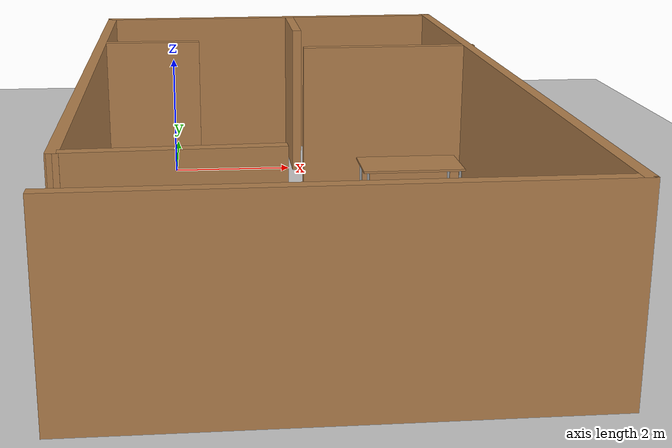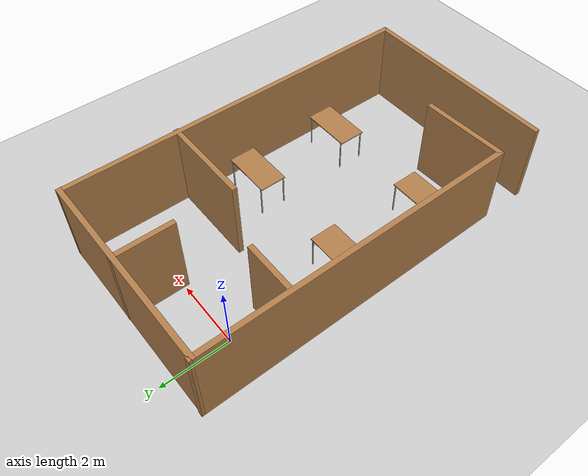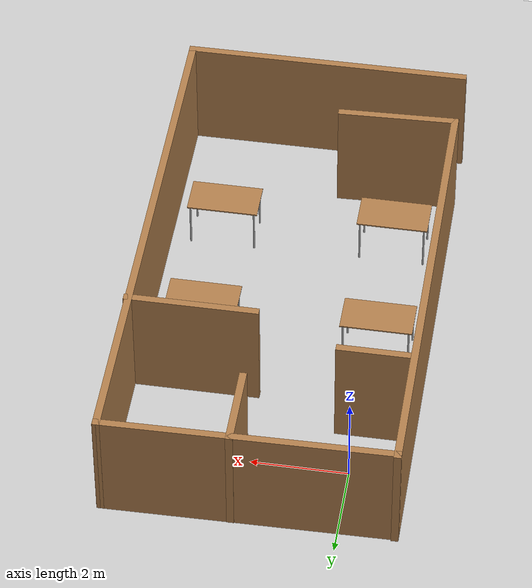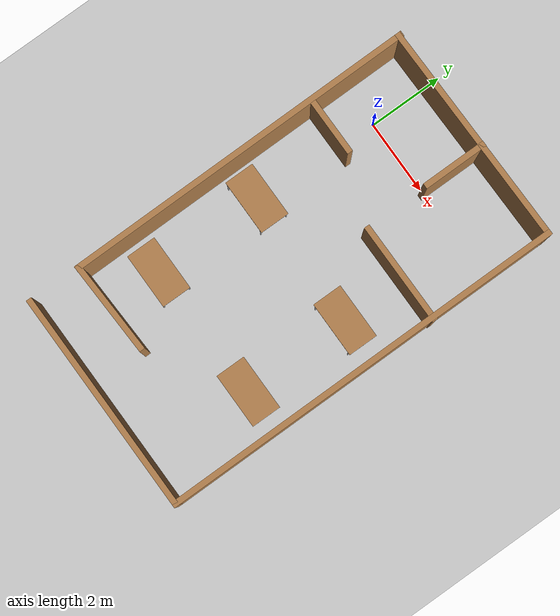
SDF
<sdf version="1.7">
 <world name="default">
  <light name="sun" type="directional">
   <pose>0 0 10 0 -0 0</pose>
   <diffuse>0.8 0.8 0.8 1</diffuse>
   <specular>0.2 0.2 0.2 1</specular>
   <attenuation>
    <range>1000</range>
    <constant>0.9</constant>
    <linear>0.01</linear>
    <quadratic>0.001</quadratic>
   </attenuation>
   <direction>-0.5 0.1 -0.9</direction>
   <spot><inner_angle>0</inner_angle><outer_angle>0</outer_angle><falloff>0</falloff></spot>
  </light>
  <model name="ground_plane">
   <static>1</static>
   <link name="link">
    <collision name="collision">
     <geometry><plane><normal>0 0 1</normal><size>100 100</size></plane></geometry>
     <surface>
      <contact><collide_bitmask>65535</collide_bitmask></contact>
      <friction><ode><mu>100</mu><mu2>50</mu2></ode></friction>
     </surface>
    </collision>
    <visual name="visual">
     <cast_shadows>0</cast_shadows>
     <geometry><plane><normal>0 0 1</normal><size>100 100</size></plane></geometry>
     <material>
      <script><uri>file://media/materials/scripts/gazebo.material</uri><name>Gazebo/Grey</name></script>
     </material>
    </visual>
   </link>
  </model>
  <gravity>0 0 -9.8</gravity>
  <magnetic_field>6e-06 2.3e-05 -4.2e-05</magnetic_field>
  <atmosphere type="adiabatic"/>
  <physics type="ode">
   <max_step_size>0.001</max_step_size>
   <real_time_factor>1</real_time_factor>
   <real_time_update_rate>1000</real_time_update_rate>
  </physics>
  <scene><ambient>0.4 0.4 0.4 1</ambient><background>0.7 0.7 0.7 1</background><shadows>1</shadows></scene>
  <spherical_coordinates>
   <surface_model>EARTH_WGS84</surface_model>
   <latitude_deg>0</latitude_deg>
   <longitude_deg>0</longitude_deg>
   <elevation>0</elevation>
   <heading_deg>0</heading_deg>
  </spherical_coordinates>
  <model name="kitchen">
   <pose>1.82809 -3.84751 0 0 0 -1.56808</pose>
   <link name="Wall_0">
    <collision name="Wall_0_Collision">
     <geometry><box><size>6.02684 0.15 2.5</size></box></geometry>
     <pose>0 0 1.25 0 -0 0</pose>
    </collision>
    <visual name="Wall_0_Visual">
     <pose>0 0 1.25 0 -0 0</pose>
     <geometry><box><size>6.02684 0.15 2.5</size></box></geometry>
     <material>
      <script><uri>file://media/materials/scripts/gazebo.material</uri><name>Gazebo/Wood</name></script>
      <ambient>1 1 1 1</ambient>
     </material>
     <meta><layer>0</layer></meta>
    </visual>
    <pose>-5.3846 -0.0133 0 0 -0 1.58438</pose>
   </link>
   <link name="Wall_10">
    <collision name="Wall_10_Collision">
     <geometry><box><size>1.75 0.15 2.5</size></box></geometry>
     <pose>0 0 1.25 0 -0 0</pose>
    </collision>
    <visual name="Wall_10_Visual">
     <pose>0 0 1.25 0 -0 0</pose>
     <geometry><box><size>1.75 0.15 2.5</size></box></geometry>
     <material>
      <script><uri>file://media/materials/scripts/gazebo.material</uri><name>Gazebo/Wood</name></script>
      <ambient>1 1 1 1</ambient>
     </material>
     <meta><layer>0</layer></meta>
    </visual>
    <pose>-4.59662 0.319041 0 0 -0 0</pose>
   </link>
   <link name="Wall_12">
    <collision name="Wall_12_Collision">
     <geometry><box><size>1.5 0.15 2.5</size></box></geometry>
     <pose>0 0 1.25 0 -0 0</pose>
    </collision>
    <visual name="Wall_12_Visual">
     <pose>0 0 1.25 0 -0 0</pose>
     <geometry><box><size>1.5 0.15 2.5</size></box></geometry>
     <material>
      <script><uri>file://media/materials/scripts/gazebo.material</uri><name>Gazebo/Wood</name></script>
      <ambient>1 1 1 1</ambient>
     </material>
     <meta><layer>0</layer></meta>
    </visual>
    <pose>-2.7632 -2.12359 0 0 -0 1.5708</pose>
   </link>
   <link name="Wall_2">
    <collision name="Wall_2_Collision">
     <geometry><box><size>11 0.15 2.5</size></box></geometry>
     <pose>0 0 1.25 0 -0 0</pose>
    </collision>
    <visual name="Wall_2_Visual">
     <pose>0 0 1.25 0 -0 0</pose>
     <geometry><box><size>11 0.15 2.5</size></box></geometry>
     <material>
      <script><uri>file://media/materials/scripts/gazebo.material</uri><name>Gazebo/Wood</name></script>
      <ambient>1 1 1 1</ambient>
     </material>
     <meta><layer>0</layer></meta>
    </visual>
    <pose>0.000504 2.925 0 0 -0 0</pose>
   </link>
   <link name="Wall_3">
    <collision name="Wall_3_Collision">
     <geometry><box><size>6 0.15 2.5</size></box></geometry>
     <pose>0 0 1.25 0 -0 0</pose>
    </collision>
    <visual name="Wall_3_Visual">
     <pose>0 0 1.25 0 -0 0</pose>
     <geometry><box><size>6 0.15 2.5</size></box></geometry>
     <material>
      <script><uri>file://media/materials/scripts/gazebo.material</uri><name>Gazebo/Wood</name></script>
      <ambient>1 1 1 1</ambient>
     </material>
     <meta><layer>0</layer></meta>
    </visual>
    <pose>5.42551 1e-06 0 0 -0 -1.5708</pose>
   </link>
   <link name="Wall_5">
    <collision name="Wall_5_Collision">
     <geometry><box><size>9.55781 0.15 2.5</size></box></geometry>
     <pose>0 0 1.25 0 -0 0</pose>
    </collision>
    <visual name="Wall_5_Visual">
     <pose>0 0 1.25 0 -0 0</pose>
     <geometry><box><size>9.55781 0.15 2.5</size></box></geometry>
     <material>
      <script><uri>file://media/materials/scripts/gazebo.material</uri><name>Gazebo/Wood</name></script>
      <ambient>1 1 1 1</ambient>
     </material>
     <meta><layer>0</layer></meta>
    </visual>
    <pose>-0.667786 -2.93639 0 0 -0 0.003233</pose>
   </link>
   <link name="Wall_6">
    <collision name="Wall_6_Collision">
     <geometry><box><size>2.52794 0.15 2.5</size></box></geometry>
     <pose>0 0 1.25 0 -0 0</pose>
    </collision>
    <visual name="Wall_6_Visual">
     <pose>0 0 1.25 0 -0 0</pose>
     <geometry><box><size>2.52794 0.15 2.5</size></box></geometry>
     <material>
      <script><uri>file://media/materials/scripts/gazebo.material</uri><name>Gazebo/Wood</name></script>
      <ambient>1 1 1 1</ambient>
     </material>
     <meta><layer>0</layer></meta>
    </visual>
    <pose>3.99582 -1.71767 0 0 -0 1.60436</pose>
   </link>
   <link name="Wall_8">
    <collision name="Wall_8_Collision">
     <geometry><box><size>2.75 0.15 2.5</size></box></geometry>
     <pose>0 0 1.25 0 -0 0</pose>
    </collision>
    <visual name="Wall_8_Visual">
     <pose>0 0 1.25 0 -0 0</pose>
     <geometry><box><size>2.75 0.15 2.5</size></box></geometry>
     <material>
      <script><uri>file://media/materials/scripts/gazebo.material</uri><name>Gazebo/Wood</name></script>
      <ambient>1 1 1 1</ambient>
     </material>
     <meta><layer>0</layer></meta>
    </visual>
    <pose>-2.04499 1.65246 0 0 -0 -1.5708</pose>
   </link>
   <static>1</static>
  </model>
  <model name="table">
   <static>1</static>
   <link name="link">
    <collision name="surface">
     <pose>0 0 1 0 -0 0</pose>
     <geometry><box><size>1.5 0.8 0.03</size></box></geometry>
     <surface><friction><ode><mu>0.6</mu><mu2>0.6</mu2></ode></friction></surface>
    </collision>
    <visual name="visual1">
     <pose>0 0 1 0 -0 0</pose>
     <geometry><box><size>1.5 0.8 0.03</size></box></geometry>
     <material>
      <script><uri>file://media/materials/scripts/gazebo.material</uri><name>Gazebo/Wood</name></script>
     </material>
    </visual>
    <collision name="front_left_leg">
     <pose>0.68 0.38 0.5 0 -0 0</pose>
     <geometry><cylinder><radius>0.02</radius><length>1</length></cylinder></geometry>
    </collision>
    <visual name="front_left_leg">
     <pose>0.68 0.38 0.5 0 -0 0</pose>
     <geometry><cylinder><radius>0.02</radius><length>1</length></cylinder></geometry>
     <material>
      <script><uri>file://media/materials/scripts/gazebo.material</uri><name>Gazebo/Grey</name></script>
     </material>
    </visual>
    <collision name="front_right_leg">
     <pose>0.68 -0.38 0.5 0 -0 0</pose>
     <geometry><cylinder><radius>0.02</radius><length>1</length></cylinder></geometry>
    </collision>
    <visual name="front_right_leg">
     <pose>0.68 -0.38 0.5 0 -0 0</pose>
     <geometry><cylinder><radius>0.02</radius><length>1</length></cylinder></geometry>
     <material>
      <script><uri>file://media/materials/scripts/gazebo.material</uri><name>Gazebo/Grey</name></script>
     </material>
    </visual>
    <collision name="back_right_leg">
     <pose>-0.68 -0.38 0.5 0 -0 0</pose>
     <geometry><cylinder><radius>0.02</radius><length>1</length></cylinder></geometry>
    </collision>
    <visual name="back_right_leg">
     <pose>-0.68 -0.38 0.5 0 -0 0</pose>
     <geometry><cylinder><radius>0.02</radius><length>1</length></cylinder></geometry>
     <material>
      <script><uri>file://media/materials/scripts/gazebo.material</uri><name>Gazebo/Grey</name></script>
     </material>
    </visual>
    <collision name="back_left_leg">
     <pose>-0.68 0.38 0.5 0 -0 0</pose>
     <geometry><cylinder><radius>0.02</radius><length>1</length></cylinder></geometry>
    </collision>
    <visual name="back_left_leg">
     <pose>-0.68 0.38 0.5 0 -0 0</pose>
     <geometry><cylinder><radius>0.02</radius><length>1</length></cylinder></geometry>
     <material>
      <script><uri>file://media/materials/scripts/gazebo.material</uri><name>Gazebo/Grey</name></script>
     </material>
    </visual>
   </link>
   <pose>3.54922 -3.43953 0 0 -0 0</pose>
  </model>
  <model name="table_0">
   <static>1</static>
   <link name="link">
    <collision name="surface">
     <pose>0 0 1 0 -0 0</pose>
     <geometry><box><size>1.5 0.8 0.03</size></box></geometry>
     <surface><friction><ode><mu>0.6</mu><mu2>0.6</mu2></ode></friction></surface>
    </collision>
    <visual name="visual1">
     <pose>0 0 1 0 -0 0</pose>
     <geometry><box><size>1.5 0.8 0.03</size></box></geometry>
     <material>
      <script><uri>file://media/materials/scripts/gazebo.material</uri><name>Gazebo/Wood</name></script>
     </material>
    </visual>
    <collision name="front_left_leg">
     <pose>0.68 0.38 0.5 0 -0 0</pose>
     <geometry><cylinder><radius>0.02</radius><length>1</length></cylinder></geometry>
    </collision>
    <visual name="front_left_leg">
     <pose>0.68 0.38 0.5 0 -0 0</pose>
     <geometry><cylinder><radius>0.02</radius><length>1</length></cylinder></geometry>
     <material>
      <script><uri>file://media/materials/scripts/gazebo.material</uri><name>Gazebo/Grey</name></script>
     </material>
    </visual>
    <collision name="front_right_leg">
     <pose>0.68 -0.38 0.5 0 -0 0</pose>
     <geometry><cylinder><radius>0.02</radius><length>1</length></cylinder></geometry>
    </collision>
    <visual name="front_right_leg">
     <pose>0.68 -0.38 0.5 0 -0 0</pose>
     <geometry><cylinder><radius>0.02</radius><length>1</length></cylinder></geometry>
     <material>
      <script><uri>file://media/materials/scripts/gazebo.material</uri><name>Gazebo/Grey</name></script>
     </material>
    </visual>
    <collision name="back_right_leg">
     <pose>-0.68 -0.38 0.5 0 -0 0</pose>
     <geometry><cylinder><radius>0.02</radius><length>1</length></cylinder></geometry>
    </collision>
    <visual name="back_right_leg">
     <pose>-0.68 -0.38 0.5 0 -0 0</pose>
     <geometry><cylinder><radius>0.02</radius><length>1</length></cylinder></geometry>
     <material>
      <script><uri>file://media/materials/scripts/gazebo.material</uri><name>Gazebo/Grey</name></script>
     </material>
    </visual>
    <collision name="back_left_leg">
     <pose>-0.68 0.38 0.5 0 -0 0</pose>
     <geometry><cylinder><radius>0.02</radius><length>1</length></cylinder></geometry>
    </collision>
    <visual name="back_left_leg">
     <pose>-0.68 0.38 0.5 0 -0 0</pose>
     <geometry><cylinder><radius>0.02</radius><length>1</length></cylinder></geometry>
     <material>
      <script><uri>file://media/materials/scripts/gazebo.material</uri><name>Gazebo/Grey</name></script>
     </material>
    </visual>
   </link>
   <pose>3.58566 -6.34057 0 0 -0 0</pose>
  </model>
  <model name="table_1">
   <static>1</static>
   <link name="link">
    <collision name="surface">
     <pose>0 0 1 0 -0 0</pose>
     <geometry><box><size>1.5 0.8 0.03</size></box></geometry>
     <surface><friction><ode><mu>0.6</mu><mu2>0.6</mu2></ode></friction></surface>
    </collision>
    <visual name="visual1">
     <pose>0 0 1 0 -0 0</pose>
     <geometry><box><size>1.5 0.8 0.03</size></box></geometry>
     <material>
      <script><uri>file://media/materials/scripts/gazebo.material</uri><name>Gazebo/Wood</name></script>
     </material>
    </visual>
    <collision name="front_left_leg">
     <pose>0.68 0.38 0.5 0 -0 0</pose>
     <geometry><cylinder><radius>0.02</radius><length>1</length></cylinder></geometry>
    </collision>
    <visual name="front_left_leg">
     <pose>0.68 0.38 0.5 0 -0 0</pose>
     <geometry><cylinder><radius>0.02</radius><length>1</length></cylinder></geometry>
     <material>
      <script><uri>file://media/materials/scripts/gazebo.material</uri><name>Gazebo/Grey</name></script>
     </material>
    </visual>
    <collision name="front_right_leg">
     <pose>0.68 -0.38 0.5 0 -0 0</pose>
     <geometry><cylinder><radius>0.02</radius><length>1</length></cylinder></geometry>
    </collision>
    <visual name="front_right_leg">
     <pose>0.68 -0.38 0.5 0 -0 0</pose>
     <geometry><cylinder><radius>0.02</radius><length>1</length></cylinder></geometry>
     <material>
      <script><uri>file://media/materials/scripts/gazebo.material</uri><name>Gazebo/Grey</name></script>
     </material>
    </visual>
    <collision name="back_right_leg">
     <pose>-0.68 -0.38 0.5 0 -0 0</pose>
     <geometry><cylinder><radius>0.02</radius><length>1</length></cylinder></geometry>
    </collision>
    <visual name="back_right_leg">
     <pose>-0.68 -0.38 0.5 0 -0 0</pose>
     <geometry><cylinder><radius>0.02</radius><length>1</length></cylinder></geometry>
     <material>
      <script><uri>file://media/materials/scripts/gazebo.material</uri><name>Gazebo/Grey</name></script>
     </material>
    </visual>
    <collision name="back_left_leg">
     <pose>-0.68 0.38 0.5 0 -0 0</pose>
     <geometry><cylinder><radius>0.02</radius><length>1</length></cylinder></geometry>
    </collision>
    <visual name="back_left_leg">
     <pose>-0.68 0.38 0.5 0 -0 0</pose>
     <geometry><cylinder><radius>0.02</radius><length>1</length></cylinder></geometry>
     <material>
      <script><uri>file://media/materials/scripts/gazebo.material</uri><name>Gazebo/Grey</name></script>
     </material>
    </visual>
   </link>
   <pose>-0.028987 -6.41375 0 0 -0 0</pose>
  </model>
  <model name="table_2">
   <static>1</static>
   <link name="link">
    <collision name="surface">
     <pose>0 0 1 0 -0 0</pose>
     <geometry><box><size>1.5 0.8 0.03</size></box></geometry>
     <surface><friction><ode><mu>0.6</mu><mu2>0.6</mu2></ode></friction></surface>
    </collision>
    <visual name="visual1">
     <pose>0 0 1 0 -0 0</pose>
     <geometry><box><size>1.5 0.8 0.03</size></box></geometry>
     <material>
      <script><uri>file://media/materials/scripts/gazebo.material</uri><name>Gazebo/Wood</name></script>
     </material>
    </visual>
    <collision name="front_left_leg">
     <pose>0.68 0.38 0.5 0 -0 0</pose>
     <geometry><cylinder><radius>0.02</radius><length>1</length></cylinder></geometry>
    </collision>
    <visual name="front_left_leg">
     <pose>0.68 0.38 0.5 0 -0 0</pose>
     <geometry><cylinder><radius>0.02</radius><length>1</length></cylinder></geometry>
     <material>
      <script><uri>file://media/materials/scripts/gazebo.material</uri><name>Gazebo/Grey</name></script>
     </material>
    </visual>
    <collision name="front_right_leg">
     <pose>0.68 -0.38 0.5 0 -0 0</pose>
     <geometry><cylinder><radius>0.02</radius><length>1</length></cylinder></geometry>
    </collision>
    <visual name="front_right_leg">
     <pose>0.68 -0.38 0.5 0 -0 0</pose>
     <geometry><cylinder><radius>0.02</radius><length>1</length></cylinder></geometry>
     <material>
      <script><uri>file://media/materials/scripts/gazebo.material</uri><name>Gazebo/Grey</name></script>
     </material>
    </visual>
    <collision name="back_right_leg">
     <pose>-0.68 -0.38 0.5 0 -0 0</pose>
     <geometry><cylinder><radius>0.02</radius><length>1</length></cylinder></geometry>
    </collision>
    <visual name="back_right_leg">
     <pose>-0.68 -0.38 0.5 0 -0 0</pose>
     <geometry><cylinder><radius>0.02</radius><length>1</length></cylinder></geometry>
     <material>
      <script><uri>file://media/materials/scripts/gazebo.material</uri><name>Gazebo/Grey</name></script>
     </material>
    </visual>
    <collision name="back_left_leg">
     <pose>-0.68 0.38 0.5 0 -0 0</pose>
     <geometry><cylinder><radius>0.02</radius><length>1</length></cylinder></geometry>
    </collision>
    <visual name="back_left_leg">
     <pose>-0.68 0.38 0.5 0 -0 0</pose>
     <geometry><cylinder><radius>0.02</radius><length>1</length></cylinder></geometry>
     <material>
      <script><uri>file://media/materials/scripts/gazebo.material</uri><name>Gazebo/Grey</name></script>
     </material>
    </visual>
   </link>
   <pose>-0.10066 -3.43953 0 0 -0 0</pose>
  </model>
 </world>
</sdf>
